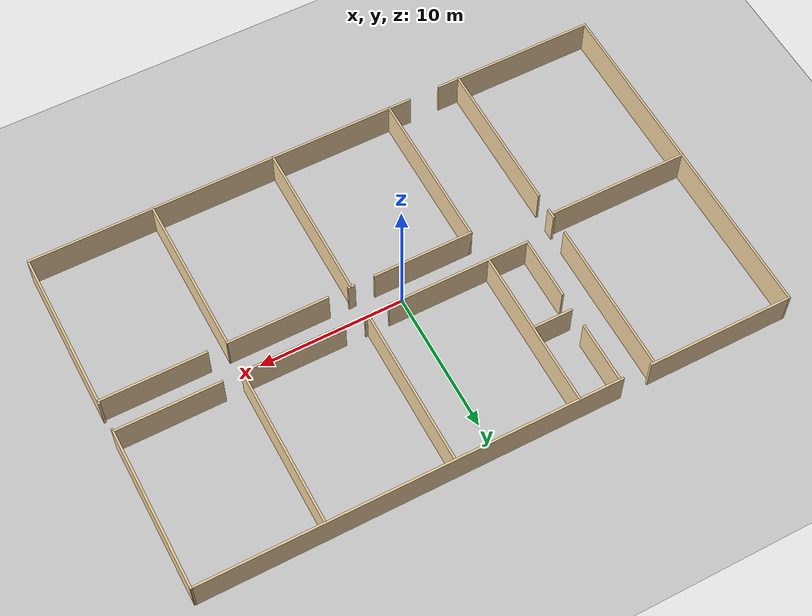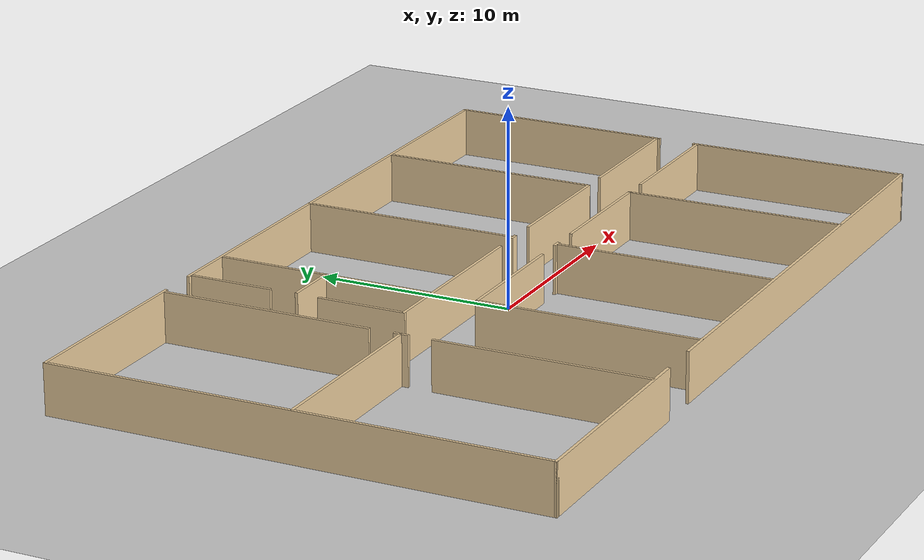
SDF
<?xml version="1.0" ?>
<sdf version='1.6'>
  <world name='camaro_bloco_g_world'>
    <light name='sun' type='directional'>
      <cast_shadows>1</cast_shadows>
      <pose frame=''>0 0 10 0 -0 0</pose>
      <diffuse>0.8 0.8 0.8 1</diffuse>
      <specular>0.2 0.2 0.2 1</specular>
      <attenuation>
        <range>1000</range>
        <constant>0.9</constant>
        <linear>0.01</linear>
        <quadratic>0.001</quadratic>
      </attenuation>
      <direction>-0.5 0.1 -0.9</direction>
    </light>
    <model name='ground_plane'>
      <static>1</static>
      <link name='link'>
        <collision name='collision'>
          <geometry>
            <plane>
              <normal>0 0 1</normal>
              <size>100 100</size>
            </plane>
          </geometry>
          <surface>
            <friction>
              <ode>
                <mu>100</mu>
                <mu2>50</mu2>
              </ode>
            </friction>
          </surface>
        </collision>
        <visual name='visual'>
          <cast_shadows>0</cast_shadows>
          <geometry>
            <plane>
              <normal>0 0 1</normal>
              <size>100 100</size>
            </plane>
          </geometry>
          <material>
            <script>
              <uri>file://media/materials/scripts/gazebo.material</uri>
              <name>Gazebo/Grey</name>
            </script>
          </material>
        </visual>
      </link>
    </model>
    <gravity>0 0 -9.8</gravity>
    <magnetic_field>6e-06 2.3e-05 -4.2e-05</magnetic_field>
    <atmosphere type='adiabatic'/>
    <physics name='default_physics' default='0' type='ode'>
      <max_step_size>0.001</max_step_size>
      <real_time_factor>1</real_time_factor>
      <real_time_update_rate>1000</real_time_update_rate>
    </physics>
    <scene>
      <ambient>0.4 0.4 0.4 1</ambient>
      <background>0.7 0.7 0.7 1</background>
      <shadows>1</shadows>
    </scene>
<!-- ================= BLOCO G (MAPA) ================= -->
    <model name='Bloco_G'>
      <pose frame=''>-0.282398 0.041671 0 0 -0 0</pose>
      <static>1</static>
      <link name='Wall_10'>
        <collision name='Wall_10_Collision'>
          <geometry><box><size>11.4529 0.15 2.5</size></box></geometry>
          <pose frame=''>0 0 1.25 0 -0 0</pose>
          <max_contacts>10</max_contacts>
        </collision>
        <visual name='Wall_10_Visual'>
          <pose frame=''>0 0 1.25 0 -0 0</pose>
          <geometry><box><size>11.4529 0.15 2.5</size></box></geometry>
          <material><script><uri>file://media/materials/scripts/gazebo.material</uri><name>Gazebo/Grey</name></script><ambient>0.921569 0.807843 0.615686 1</ambient></material>
        </visual>
        <pose frame=''>20.3344 6.66992 0 0 -0 1.56872</pose>
      </link>
      <link name='Wall_12'>
        <collision name='Wall_12_Collision'>
          <geometry><box><size>11.5 0.15 2.5</size></box></geometry>
          <pose frame=''>0 0 1.25 0 -0 0</pose>
        </collision>
        <visual name='Wall_12_Visual'>
          <pose frame=''>0 0 1.25 0 -0 0</pose>
          <geometry><box><size>11.5 0.15 2.5</size></box></geometry>
          <material><script><uri>file://media/materials/scripts/gazebo.material</uri><name>Gazebo/Grey</name></script><ambient>0.921569 0.807843 0.615686 1</ambient></material>
        </visual>
        <pose frame=''>20.3381 -6.64639 0 0 -0 -1.5708</pose>
      </link>
      <link name='Wall_14'>
        <collision name='Wall_14_Collision'>
          <geometry><box><size>27.2335 0.15 2.5</size></box></geometry>
          <pose frame=''>0 0 1.25 0 -0 0</pose>
        </collision>
        <visual name='Wall_14_Visual'>
          <pose frame=''>0 0 1.25 0 -0 0</pose>
          <geometry><box><size>27.2335 0.15 2.5</size></box></geometry>
          <material><script><uri>file://media/materials/scripts/gazebo.material</uri><name>Gazebo/Grey</name></script><ambient>0.921569 0.807843 0.615686 1</ambient></material>
        </visual>
        <pose frame=''>6.79631 -12.3019 0 0 -0 -0.00144</pose>
      </link>
      <link name='Wall_16'>
        <collision name='Wall_16_Collision'>
          <geometry><box><size>11.4733 0.15 2.5</size></box></geometry>
          <pose frame=''>0 0 1.25 0 -0 0</pose>
        </collision>
        <visual name='Wall_16_Visual'>
          <pose frame=''>0 0 1.25 0 -0 0</pose>
          <geometry><box><size>11.4733 0.15 2.5</size></box></geometry>
          <material><script><uri>file://media/materials/scripts/gazebo.material</uri><name>Gazebo/Grey</name></script><ambient>0.921569 0.807843 0.615686 1</ambient></material>
        </visual>
        <pose frame=''>-14.6846 -12.3013 0 0 -0 -3.14115</pose>
      </link>
      <link name='Wall_18'>
        <collision name='Wall_18_Collision'>
          <geometry><box><size>0.75 0.15 2.5</size></box></geometry>
          <pose frame=''>0 0 1.25 0 -0 0</pose>
        </collision>
        <visual name='Wall_18_Visual'>
          <pose frame=''>0 0 1.25 0 -0 0</pose>
          <geometry><box><size>0.75 0.15 2.5</size></box></geometry>
          <material><script><uri>file://media/materials/scripts/gazebo.material</uri><name>Gazebo/Grey</name></script><ambient>0.921569 0.807843 0.615686 1</ambient></material>
        </visual>
        <pose frame=''>-10.4814 -0.000928 0 0 -0 1.5708</pose>
      </link>
      <link name='Wall_21'>
        <collision name='Wall_21_Collision'>
          <geometry><box><size>10 0.15 2.5</size></box></geometry>
          <pose frame=''>0 0 1.25 0 -0 0</pose>
        </collision>
        <visual name='Wall_21_Visual'>
          <pose frame=''>0 0 1.25 0 -0 0</pose>
          <geometry><box><size>10 0.15 2.5</size></box></geometry>
          <material><script><uri>file://media/materials/scripts/gazebo.material</uri><name>Gazebo/Grey</name></script><ambient>0.921569 0.807843 0.615686 1</ambient></material>
        </visual>
        <pose frame=''>-15.4071 0.018035 0 0 -0 0</pose>
      </link>
      <link name='Wall_25'>
        <collision name='Wall_25_Collision'>
          <geometry><box><size>10.75 0.15 2.5</size></box></geometry>
          <pose frame=''>0 0 1.25 0 -0 0</pose>
        </collision>
        <visual name='Wall_25_Visual'>
          <pose frame=''>0 0 1.25 0 -0 0</pose>
          <geometry><box><size>10.75 0.15 2.5</size></box></geometry>
          <material><script><uri>file://media/materials/scripts/gazebo.material</uri><name>Gazebo/Grey</name></script><ambient>0.921569 0.807843 0.615686 1</ambient></material>
        </visual>
        <pose frame=''>-10.5156 6.96629 0 0 -0 1.5708</pose>
      </link>
      <link name='Wall_27'>
        <collision name='Wall_27_Collision'>
          <geometry><box><size>10.75 0.15 2.5</size></box></geometry>
          <pose frame=''>0 0 1.25 0 -0 0</pose>
        </collision>
        <visual name='Wall_27_Visual'>
          <pose frame=''>0 0 1.25 0 -0 0</pose>
          <geometry><box><size>10.75 0.15 2.5</size></box></geometry>
          <material><script><uri>file://media/materials/scripts/gazebo.material</uri><name>Gazebo/Grey</name></script><ambient>0.921569 0.807843 0.615686 1</ambient></material>
        </visual>
        <pose frame=''>-10.485 -6.91859 0 0 -0 -1.5708</pose>
      </link>
      <link name='Wall_29'>
        <collision name='Wall_29_Collision'>
          <geometry><box><size>11.25 0.15 2.5</size></box></geometry>
          <pose frame=''>0 0 1.25 0 -0 0</pose>
        </collision>
        <visual name='Wall_29_Visual'>
          <pose frame=''>0 0 1.25 0 -0 0</pose>
          <geometry><box><size>11.25 0.15 2.5</size></box></geometry>
          <material><script><uri>file://media/materials/scripts/gazebo.material</uri><name>Gazebo/Grey</name></script><ambient>0.921569 0.807843 0.615686 1</ambient></material>
        </visual>
        <pose frame=''>-5.24575 -6.71183 0 0 -0 -1.5708</pose>
      </link>
      <link name='Wall_3'>
        <collision name='Wall_3_Collision'>
          <geometry><box><size>24.7673 0.15 2.5</size></box></geometry>
          <pose frame=''>0 0 1.25 0 -0 0</pose>
        </collision>
        <visual name='Wall_3_Visual'>
          <pose frame=''>0 0 1.25 0 -0 0</pose>
          <geometry><box><size>24.7673 0.15 2.5</size></box></geometry>
          <material><script><uri>file://media/materials/scripts/gazebo.material</uri><name>Gazebo/Grey</name></script><ambient>0.921569 0.807843 0.615686 1</ambient></material>
        </visual>
        <pose frame=''>-20.3462 0.004863 0 0 -0 -1.5708</pose>
      </link>
      <link name='Wall_31'>
        <collision name='Wall_31_Collision'>
          <geometry><box><size>7 0.15 2.5</size></box></geometry>
          <pose frame=''>0 0 1.25 0 -0 0</pose>
        </collision>
        <visual name='Wall_31_Visual'>
          <pose frame=''>0 0 1.25 0 -0 0</pose>
          <geometry><box><size>7 0.15 2.5</size></box></geometry>
          <material><script><uri>file://media/materials/scripts/gazebo.material</uri><name>Gazebo/Grey</name></script><ambient>0.921569 0.807843 0.615686 1</ambient></material>
        </visual>
        <pose frame=''>-1.81206 -1.16183 0 0 -0 0</pose>
      </link>
      <link name='Wall_33'>
        <collision name='Wall_33_Collision'>
          <geometry><box><size>0.5 0.15 2.5</size></box></geometry>
          <pose frame=''>0 0 1.25 0 -0 0</pose>
        </collision>
        <visual name='Wall_33_Visual'>
          <pose frame=''>0 0 1.25 0 -0 0</pose>
          <geometry><box><size>0.5 0.15 2.5</size></box></geometry>
          <material><script><uri>file://media/materials/scripts/gazebo.material</uri><name>Gazebo/Grey</name></script><ambient>0.921569 0.807843 0.615686 1</ambient></material>
        </visual>
        <pose frame=''>3.27942 -1.1433 0 0 -0 0</pose>
      </link>
      <link name='Wall_36'>
        <collision name='Wall_36_Collision'>
          <geometry><box><size>7 0.15 2.5</size></box></geometry>
          <pose frame=''>0 0 1.25 0 -0 0</pose>
        </collision>
        <visual name='Wall_36_Visual'>
          <pose frame=''>0 0 1.25 0 -0 0</pose>
          <geometry><box><size>7 0.15 2.5</size></box></geometry>
          <material><script><uri>file://media/materials/scripts/gazebo.material</uri><name>Gazebo/Grey</name></script><ambient>0.921569 0.807843 0.615686 1</ambient></material>
        </visual>
        <pose frame=''>8.36312 -1.1333 0 0 -0 0</pose>
      </link>
      <link name='Wall_43'>
        <collision name='Wall_43_Collision'>
          <geometry><box><size>11.25 0.15 2.5</size></box></geometry>
          <pose frame=''>0 0 1.25 0 -0 0</pose>
        </collision>
        <visual name='Wall_43_Visual'>
          <pose frame=''>0 0 1.25 0 -0 0</pose>
          <geometry><box><size>11.25 0.15 2.5</size></box></geometry>
          <material><script><uri>file://media/materials/scripts/gazebo.material</uri><name>Gazebo/Grey</name></script><ambient>0.921569 0.807843 0.615686 1</ambient></material>
        </visual>
        <pose frame=''>3.28753 -6.70008 0 0 -0 1.5708</pose>
      </link>
      <link name='Wall_45'>
        <collision name='Wall_45_Collision'>
          <geometry><box><size>11.2632 0.15 2.5</size></box></geometry>
          <pose frame=''>0 0 1.25 0 -0 0</pose>
        </collision>
        <visual name='Wall_45_Visual'>
          <pose frame=''>0 0 1.25 0 -0 0</pose>
          <geometry><box><size>11.2632 0.15 2.5</size></box></geometry>
          <material><script><uri>file://media/materials/scripts/gazebo.material</uri><name>Gazebo/Grey</name></script><ambient>0.921569 0.807843 0.615686 1</ambient></material>
        </visual>
        <pose frame=''>11.8046 -6.68987 0 0 -0 1.57376</pose>
      </link>
      <link name='Wall_47'>
        <collision name='Wall_47_Collision'>
          <geometry><box><size>7.25 0.15 2.5</size></box></geometry>
          <pose frame=''>0 0 1.25 0 -0 0</pose>
        </collision>
        <visual name='Wall_47_Visual'>
          <pose frame=''>0 0 1.25 0 -0 0</pose>
          <geometry><box><size>7.25 0.15 2.5</size></box></geometry>
          <material><script><uri>file://media/materials/scripts/gazebo.material</uri><name>Gazebo/Grey</name></script><ambient>0.921569 0.807843 0.615686 1</ambient></material>
        </visual>
        <pose frame=''>16.7254 -1.13387 0 0 -0 0</pose>
      </link>
      <link name='Wall_49'>
        <collision name='Wall_49_Collision'>
          <geometry><box><size>10 0.15 2.5</size></box></geometry>
          <pose frame=''>0 0 1.25 0 -0 0</pose>
        </collision>
        <visual name='Wall_49_Visual'>
          <pose frame=''>0 0 1.25 0 -0 0</pose>
          <geometry><box><size>10 0.15 2.5</size></box></geometry>
          <material><script><uri>file://media/materials/scripts/gazebo.material</uri><name>Gazebo/Grey</name></script><ambient>0.921569 0.807843 0.615686 1</ambient></material>
        </visual>
        <pose frame=''>-3.13117 1.13501 0 0 -0 0</pose>
      </link>
      <link name='Wall_5'>
        <collision name='Wall_5_Collision'>
          <geometry><box><size>10.1888 0.15 2.5</size></box></geometry>
          <pose frame=''>0 0 1.25 0 -0 0</pose>
        </collision>
        <visual name='Wall_5_Visual'>
          <pose frame=''>0 0 1.25 0 -0 0</pose>
          <geometry><box><size>10.1888 0.15 2.5</size></box></geometry>
          <material><script><uri>file://media/materials/scripts/gazebo.material</uri><name>Gazebo/Grey</name></script><ambient>0.921569 0.807843 0.615686 1</ambient></material>
        </visual>
        <pose frame=''>-15.3225 12.3135 0 0 -0 0</pose>
      </link>
      <link name='Wall_51'>
        <collision name='Wall_51_Collision'>
          <geometry><box><size>0.5 0.15 2.5</size></box></geometry>
          <pose frame=''>0 0 1.25 0 -0 0</pose>
        </collision>
        <visual name='Wall_51_Visual'>
          <pose frame=''>0 0 1.25 0 -0 0</pose>
          <geometry><box><size>0.5 0.15 2.5</size></box></geometry>
          <material><script><uri>file://media/materials/scripts/gazebo.material</uri><name>Gazebo/Grey</name></script><ambient>0.921569 0.807843 0.615686 1</ambient></material>
        </visual>
        <pose frame=''>3.28129 1.1466 0 0 -0 0</pose>
      </link>
      <link name='Wall_53'>
        <collision name='Wall_53_Collision'>
          <geometry><box><size>7 0.15 2.5</size></box></geometry>
          <pose frame=''>0 0 1.25 0 -0 0</pose>
        </collision>
        <visual name='Wall_53_Visual'>
          <pose frame=''>0 0 1.25 0 -0 0</pose>
          <geometry><box><size>7 0.15 2.5</size></box></geometry>
          <material><script><uri>file://media/materials/scripts/gazebo.material</uri><name>Gazebo/Grey</name></script><ambient>0.921569 0.807843 0.615686 1</ambient></material>
        </visual>
        <pose frame=''>8.36116 1.13903 0 0 -0 0</pose>
      </link>
      <link name='Wall_55'>
        <collision name='Wall_55_Collision'>
          <geometry><box><size>7.25 0.15 2.5</size></box></geometry>
          <pose frame=''>0 0 1.25 0 -0 0</pose>
        </collision>
        <visual name='Wall_55_Visual'>
          <pose frame=''>0 0 1.25 0 -0 0</pose>
          <geometry><box><size>7.25 0.15 2.5</size></box></geometry>
          <material><script><uri>file://media/materials/scripts/gazebo.material</uri><name>Gazebo/Grey</name></script><ambient>0.921569 0.807843 0.615686 1</ambient></material>
        </visual>
        <pose frame=''>16.7719 1.14755 0 0 -0 0</pose>
      </link>
      <link name='Wall_59'>
        <collision name='Wall_59_Collision'>
          <geometry><box><size>11.25 0.15 2.5</size></box></geometry>
          <pose frame=''>0 0 1.25 0 -0 0</pose>
        </collision>
        <visual name='Wall_59_Visual'>
          <pose frame=''>0 0 1.25 0 -0 0</pose>
          <geometry><box><size>11.25 0.15 2.5</size></box></geometry>
          <material><script><uri>file://media/materials/scripts/gazebo.material</uri><name>Gazebo/Grey</name></script><ambient>0.921569 0.807843 0.615686 1</ambient></material>
        </visual>
        <pose frame=''>11.8388 6.69177 0 0 -0 -1.5708</pose>
      </link>
      <link name='Wall_61'>
        <collision name='Wall_61_Collision'>
          <geometry><box><size>11.25 0.15 2.5</size></box></geometry>
          <pose frame=''>0 0 1.25 0 -0 0</pose>
        </collision>
        <visual name='Wall_61_Visual'>
          <pose frame=''>0 0 1.25 0 -0 0</pose>
          <geometry><box><size>11.25 0.15 2.5</size></box></geometry>
          <material><script><uri>file://media/materials/scripts/gazebo.material</uri><name>Gazebo/Grey</name></script><ambient>0.921569 0.807843 0.615686 1</ambient></material>
        </visual>
        <pose frame=''>3.28321 6.75811 0 0 -0 1.5708</pose>
      </link>
      <link name='Wall_63'>
        <collision name='Wall_63_Collision'>
          <geometry><box><size>11.25 0.15 2.5</size></box></geometry>
          <pose frame=''>0 0 1.25 0 -0 0</pose>
        </collision>
        <visual name='Wall_63_Visual'>
          <pose frame=''>0 0 1.25 0 -0 0</pose>
          <geometry><box><size>11.25 0.15 2.5</size></box></geometry>
          <material><script><uri>file://media/materials/scripts/gazebo.material</uri><name>Gazebo/Grey</name></script><ambient>0.921569 0.807843 0.615686 1</ambient></material>
        </visual>
        <pose frame=''>-5.25235 6.69355 0 0 -0 1.5708</pose>
      </link>
      <link name='Wall_67'>
        <collision name='Wall_67_Collision'>
          <geometry><box><size>2.75 0.15 2.5</size></box></geometry>
          <pose frame=''>0 0 1.25 0 -0 0</pose>
        </collision>
        <visual name='Wall_67_Visual'>
          <pose frame=''>0 0 1.25 0 -0 0</pose>
          <geometry><box><size>2.75 0.15 2.5</size></box></geometry>
          <material><script><uri>file://media/materials/scripts/gazebo.material</uri><name>Gazebo/Grey</name></script><ambient>0.921569 0.807843 0.615686 1</ambient></material>
        </visual>
        <pose frame=''>-6.64412 6.7262 0 0 -0 3.14159</pose>
      </link>
      <link name='Wall_69'>
        <collision name='Wall_69_Collision'>
          <geometry><box><size>4.25 0.15 2.5</size></box></geometry>
          <pose frame=''>0 0 1.25 0 -0 0</pose>
        </collision>
        <visual name='Wall_69_Visual'>
          <pose frame=''>0 0 1.25 0 -0 0</pose>
          <geometry><box><size>4.25 0.15 2.5</size></box></geometry>
          <material><script><uri>file://media/materials/scripts/gazebo.material</uri><name>Gazebo/Grey</name></script><ambient>0.921569 0.807843 0.615686 1</ambient></material>
        </visual>
        <pose frame=''>-8.07578 10.1665 0 0 -0 1.5708</pose>
      </link>
      <link name='Wall_71'>
        <collision name='Wall_71_Collision'>
          <geometry><box><size>4.5 0.15 2.5</size></box></geometry>
          <pose frame=''>0 0 1.25 0 -0 0</pose>
        </collision>
        <visual name='Wall_71_Visual'>
          <pose frame=''>0 0 1.25 0 -0 0</pose>
          <geometry><box><size>4.5 0.15 2.5</size></box></geometry>
          <material><script><uri>file://media/materials/scripts/gazebo.material</uri><name>Gazebo/Grey</name></script><ambient>0.921569 0.807843 0.615686 1</ambient></material>
        </visual>
        <pose frame=''>-8.06039 3.30966 0 0 -0 1.5708</pose>
      </link>
      <link name='Wall_8'>
        <collision name='Wall_8_Collision'>
          <geometry><box><size>28.75 0.15 2.5</size></box></geometry>
          <pose frame=''>0 0 1.25 0 -0 0</pose>
        </collision>
        <visual name='Wall_8_Visual'>
          <pose frame=''>0 0 1.25 0 -0 0</pose>
          <geometry><box><size>28.75 0.15 2.5</size></box></geometry>
          <material><script><uri>file://media/materials/scripts/gazebo.material</uri><name>Gazebo/Grey</name></script><ambient>0.921569 0.807843 0.615686 1</ambient></material>
        </visual>
        <pose frame=''>6.0461 12.3213 0 0 -0 0</pose>
      </link>
    </model>
  </world>
</sdf>
